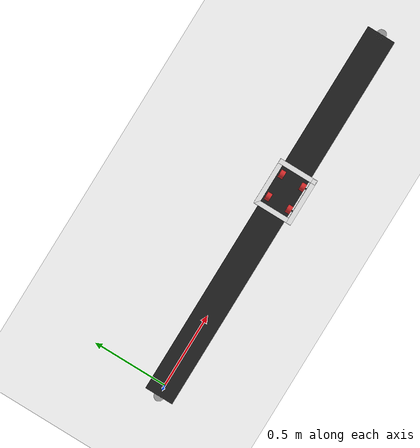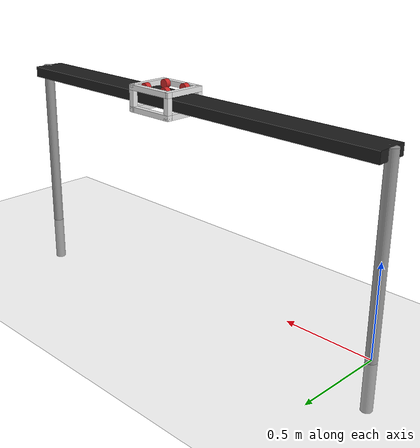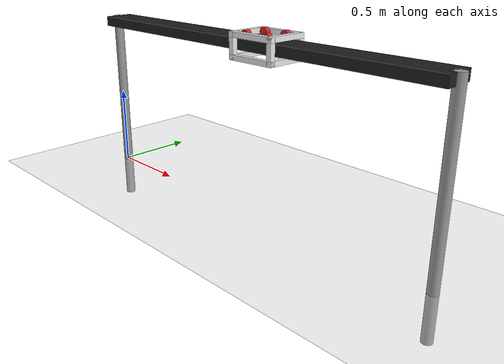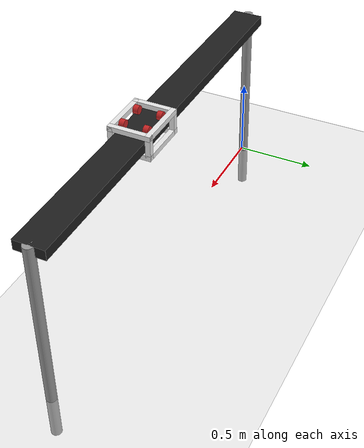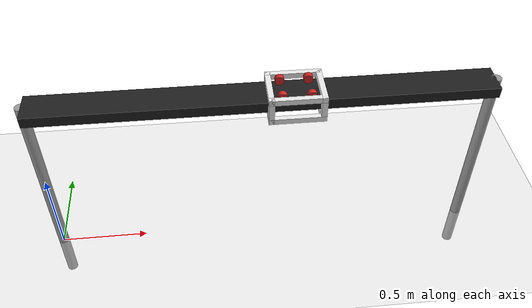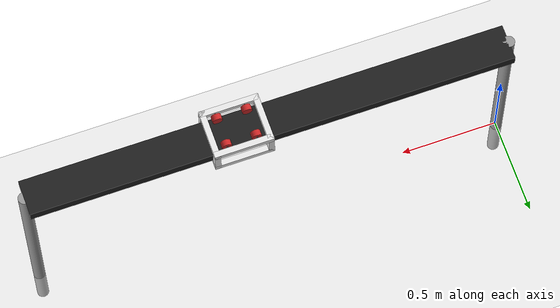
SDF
<sdf version="1.6">
 <world name="default">
  <light name="sun" type="directional">
   <pose>0 0 10 0 -0 0</pose>
   <diffuse>0.8 0.8 0.8 1</diffuse>
   <specular>0.1 0.1 0.1 1</specular>
   <attenuation>
    <range>1000</range>
    <constant>0.9</constant>
    <linear>0.01</linear>
    <quadratic>0.001</quadratic>
   </attenuation>
   <direction>-0.5 0.5 -1</direction>
  </light>
  <model name="ground_plane">
   <static>1</static>
   <link name="link">
    <collision name="collision">
     <geometry><plane><normal>0 0 1</normal><size>100 100</size></plane></geometry>
     <surface><friction><ode><mu>100</mu><mu2>50</mu2></ode></friction></surface>
    </collision>
    <visual name="visual">
     <cast_shadows>0</cast_shadows>
     <geometry><plane><normal>0 0 1</normal><size>100 100</size></plane></geometry>
     <material>
      <script><uri>file://media/materials/scripts/gazebo.material</uri><name>Gazebo/Grey</name></script>
     </material>
    </visual>
   </link>
  </model>
  <gravity>0 0 -9.8</gravity>
  <magnetic_field>6e-06 2.3e-05 -4.2e-05</magnetic_field>
  <atmosphere type="adiabatic"/>
  <physics name="default_physics" default="0" type="ode">
   <max_step_size>0.001</max_step_size>
   <real_time_factor>1</real_time_factor>
   <real_time_update_rate>1000</real_time_update_rate>
  </physics>
  <scene><ambient>0.4 0.4 0.4 1</ambient><background>0.7 0.7 0.7 1</background><shadows>1</shadows></scene>
  <spherical_coordinates>
   <surface_model>EARTH_WGS84</surface_model>
   <latitude_deg>0</latitude_deg>
   <longitude_deg>0</longitude_deg>
   <elevation>0</elevation>
   <heading_deg>0</heading_deg>
  </spherical_coordinates>
  <model name="aTrack">
   <static>1</static>
   <link name="link">
    <collision name="surface">
     <pose>0 0 1 0 -0 0</pose>
     <geometry><box><size>2.45 0.18 0.06</size></box></geometry>
     <surface><friction><ode><mu>0.6</mu><mu2>0.6</mu2></ode></friction></surface>
    </collision>
    <visual name="visual1">
     <pose>0 0 1 0 -0 0</pose>
     <geometry><box><size>2.45 0.18 0.06</size></box></geometry>
     <material>
      <script><uri>file://media/materials/scripts/gazebo.material</uri><name>Gazebo/Black</name></script>
     </material>
    </visual>
    <collision name="right_leg">
     <pose>-1.225 0 0.38 0 -0 0</pose>
     <geometry><cylinder><radius>0.03</radius><length>1.3</length></cylinder></geometry>
    </collision>
    <visual name="right_leg">
     <pose>-1.225 0 0.38 0 -0 0</pose>
     <geometry><cylinder><radius>0.03</radius><length>1.3</length></cylinder></geometry>
     <material>
      <script><uri>file://media/materials/scripts/gazebo.material</uri><name>Gazebo/Grey</name></script>
     </material>
    </visual>
    <collision name="left_leg">
     <pose>1.225 0 0.38 0 -0 0</pose>
     <geometry><cylinder><radius>0.03</radius><length>1.3</length></cylinder></geometry>
    </collision>
    <visual name="left_leg">
     <pose>1.225 0 0.38 0 -0 0</pose>
     <geometry><cylinder><radius>0.03</radius><length>1.3</length></cylinder></geometry>
     <material>
      <script><uri>file://media/materials/scripts/gazebo.material</uri><name>Gazebo/Grey</name></script>
     </material>
    </visual>
   </link>
   <pose>1.22216 0.007845 0 0 -0 0</pose>
  </model>
  <model name="mrobot">
   <link name="base_footprint">
    <inertial>
     <pose>0 -0.11 0.075 0 -0 0</pose>
     <mass>60</mass>
     <inertia>
      <ixx>24.628</ixx>
      <ixy>0</ixy>
      <ixz>0</ixz>
      <iyy>24.873</iyy>
      <iyz>1.11022e-16</iyz>
      <izz>25.213</izz>
     </inertia>
    </inertial>
    <collision name="base_footprint_fixed_joint_lump__base_link_collision">
     <pose>0 0 0.135 0 -0 0</pose>
     <geometry><box><size>0.3 0.03 0.03</size></box></geometry>
    </collision>
    <collision name="base_footprint_fixed_joint_lump__base1_link_collision_1">
     <pose>0 -0.22 0.135 0 -0 0</pose>
     <geometry><box><size>0.3 0.03 0.03</size></box></geometry>
    </collision>
    <collision name="base_footprint_fixed_joint_lump__base3_link_collision_2">
     <pose>0 -0.22 0.015 0 -0 0</pose>
     <geometry><box><size>0.3 0.03 0.03</size></box></geometry>
    </collision>
    <collision name="base_footprint_fixed_joint_lump__base2_link_collision_3">
     <pose>0 0 0.015 0 -0 0</pose>
     <geometry><box><size>0.3 0.03 0.03</size></box></geometry>
    </collision>
    <collision name="base_footprint_fixed_joint_lump__body1-1_link_collision_4">
     <pose>0.135 -0.11 0.135 0 0 -1.5708</pose>
     <geometry><box><size>0.25 0.03 0.03</size></box></geometry>
    </collision>
    <collision name="base_footprint_fixed_joint_lump__body1-2_link_collision_5">
     <pose>0.135 -0.11 0.015 0 0 -1.5708</pose>
     <geometry><box><size>0.25 0.03 0.03</size></box></geometry>
    </collision>
    <collision name="base_footprint_fixed_joint_lump__body1-3_link_collision_6">
     <pose>-0.135 -0.11 0.135 0 0 -1.5708</pose>
     <geometry><box><size>0.25 0.03 0.03</size></box></geometry>
    </collision>
    <collision name="base_footprint_fixed_joint_lump__body1-4_link_collision_7">
     <pose>-0.135 -0.11 0.015 0 0 -1.5708</pose>
     <geometry><box><size>0.25 0.03 0.03</size></box></geometry>
    </collision>
    <collision name="base_footprint_fixed_joint_lump__body2-1_link_collision_8">
     <pose>0.135 0 0.075 0 -0 0</pose>
     <geometry><box><size>0.03 0.03 0.15</size></box></geometry>
    </collision>
    <collision name="base_footprint_fixed_joint_lump__body2-2_link_collision_9">
     <pose>0.135 -0.22 0.075 0 -0 0</pose>
     <geometry><box><size>0.03 0.03 0.15</size></box></geometry>
    </collision>
    <collision name="base_footprint_fixed_joint_lump__body2-3_link_collision_10">
     <pose>-0.135 0 0.075 0 -0 0</pose>
     <geometry><box><size>0.03 0.03 0.15</size></box></geometry>
    </collision>
    <collision name="base_footprint_fixed_joint_lump__body2-4_link_collision_11">
     <pose>-0.135 -0.22 0.075 0 -0 0</pose>
     <geometry><box><size>0.03 0.03 0.15</size></box></geometry>
    </collision>
    <visual name="base_footprint_visual">
     <geometry><box><size>0.001 0.001 0.001</size></box></geometry>
     <material><script><uri>__default__</uri><name>__default__</name></script></material>
    </visual>
    <visual name="base_footprint_fixed_joint_lump__base_link_visual_1">
     <pose>0 0 0.135 0 -0 0</pose>
     <geometry><box><size>0.3 0.03 0.03</size></box></geometry>
     <material>
      <script><name>Gazebo/White</name><uri>file://media/materials/scripts/gazebo.material</uri></script>
     </material>
    </visual>
    <visual name="base_footprint_fixed_joint_lump__base1_link_visual_2">
     <pose>0 -0.22 0.135 0 -0 0</pose>
     <geometry><box><size>0.3 0.03 0.03</size></box></geometry>
     <material>
      <script><name>Gazebo/White</name><uri>file://media/materials/scripts/gazebo.material</uri></script>
     </material>
    </visual>
    <visual name="base_footprint_fixed_joint_lump__base3_link_visual_3">
     <pose>0 -0.22 0.015 0 -0 0</pose>
     <geometry><box><size>0.3 0.03 0.03</size></box></geometry>
     <material>
      <script><name>Gazebo/White</name><uri>file://media/materials/scripts/gazebo.material</uri></script>
     </material>
    </visual>
    <visual name="base_footprint_fixed_joint_lump__base2_link_visual_4">
     <pose>0 0 0.015 0 -0 0</pose>
     <geometry><box><size>0.3 0.03 0.03</size></box></geometry>
     <material>
      <script><name>Gazebo/White</name><uri>file://media/materials/scripts/gazebo.material</uri></script>
     </material>
    </visual>
    <visual name="base_footprint_fixed_joint_lump__body1-1_link_visual_5">
     <pose>0.135 -0.11 0.135 0 0 -1.5708</pose>
     <geometry><box><size>0.25 0.03 0.03</size></box></geometry>
     <material>
      <script><name>Gazebo/White</name><uri>file://media/materials/scripts/gazebo.material</uri></script>
     </material>
    </visual>
    <visual name="base_footprint_fixed_joint_lump__body1-2_link_visual_6">
     <pose>0.135 -0.11 0.015 0 0 -1.5708</pose>
     <geometry><box><size>0.25 0.03 0.03</size></box></geometry>
     <material>
      <script><name>Gazebo/White</name><uri>file://media/materials/scripts/gazebo.material</uri></script>
     </material>
    </visual>
    <visual name="base_footprint_fixed_joint_lump__body1-3_link_visual_7">
     <pose>-0.135 -0.11 0.135 0 0 -1.5708</pose>
     <geometry><box><size>0.25 0.03 0.03</size></box></geometry>
     <material>
      <script><name>Gazebo/White</name><uri>file://media/materials/scripts/gazebo.material</uri></script>
     </material>
    </visual>
    <visual name="base_footprint_fixed_joint_lump__body1-4_link_visual_8">
     <pose>-0.135 -0.11 0.015 0 0 -1.5708</pose>
     <geometry><box><size>0.25 0.03 0.03</size></box></geometry>
     <material>
      <script><name>Gazebo/White</name><uri>file://media/materials/scripts/gazebo.material</uri></script>
     </material>
    </visual>
    <visual name="base_footprint_fixed_joint_lump__body2-1_link_visual_9">
     <pose>0.135 0 0.075 0 -0 0</pose>
     <geometry><box><size>0.03 0.03 0.15</size></box></geometry>
     <material>
      <script><name>Gazebo/White</name><uri>file://media/materials/scripts/gazebo.material</uri></script>
     </material>
    </visual>
    <visual name="base_footprint_fixed_joint_lump__body2-2_link_visual_10">
     <pose>0.135 -0.22 0.075 0 -0 0</pose>
     <geometry><box><size>0.03 0.03 0.15</size></box></geometry>
     <material>
      <script><name>Gazebo/White</name><uri>file://media/materials/scripts/gazebo.material</uri></script>
     </material>
    </visual>
    <visual name="base_footprint_fixed_joint_lump__body2-3_link_visual_11">
     <pose>-0.135 0 0.075 0 -0 0</pose>
     <geometry><box><size>0.03 0.03 0.15</size></box></geometry>
     <material>
      <script><name>Gazebo/White</name><uri>file://media/materials/scripts/gazebo.material</uri></script>
     </material>
    </visual>
    <visual name="base_footprint_fixed_joint_lump__body2-4_link_visual_12">
     <pose>-0.135 -0.22 0.075 0 -0 0</pose>
     <geometry><box><size>0.03 0.03 0.15</size></box></geometry>
     <material>
      <script><name>Gazebo/White</name><uri>file://media/materials/scripts/gazebo.material</uri></script>
     </material>
    </visual>
   </link>
   <link name="connect3_link">
    <pose>-0.075 -0.205 0.135 0 -0 0</pose>
    <inertial>
     <pose>0 0.016667 0 0 -0 0</pose>
     <mass>3</mass>
     <inertia>
      <ixx>0.00091875</ixx>
      <ixy>0</ixy>
      <ixz>0</ixz>
      <iyy>0.000502083</iyy>
      <iyz>0</iyz>
      <izz>0.00105417</izz>
     </inertia>
    </inertial>
    <collision name="connect3_link_collision">
     <pose>0 0 0 1.5708 -0 0</pose>
     <geometry><cylinder><length>0.02</length><radius>0.005</radius></cylinder></geometry>
    </collision>
    <collision name="connect3_link_fixed_joint_lump__wheel3_link_collision_1">
     <pose>0 0.025 0 1.5708 -0 0</pose>
     <geometry><cylinder><length>0.03</length><radius>0.025</radius></cylinder></geometry>
    </collision>
    <visual name="connect3_link_visual">
     <pose>0 0 0 1.5708 -0 0</pose>
     <geometry><cylinder><length>0.02</length><radius>0.005</radius></cylinder></geometry>
     <material>
      <script><name>Gazebo/Black</name><uri>file://media/materials/scripts/gazebo.material</uri></script>
     </material>
    </visual>
    <visual name="connect3_link_fixed_joint_lump__wheel3_link_visual_1">
     <pose>0 0.025 0 1.5708 -0 0</pose>
     <geometry><cylinder><length>0.03</length><radius>0.025</radius></cylinder></geometry>
     <material>
      <script><name>Gazebo/Red</name><uri>file://media/materials/scripts/gazebo.material</uri></script>
     </material>
    </visual>
   </link>
   <joint name="left_wheel3_joint" type="revolute">
    <child>connect3_link</child>
    <parent>base_footprint</parent>
    <axis>
     <xyz>0 1 0</xyz>
     <limit><lower>-1e+16</lower><upper>1e+16</upper></limit>
     <dynamics><spring_reference>0</spring_reference><spring_stiffness>0</spring_stiffness></dynamics>
     <use_parent_model_frame>1</use_parent_model_frame>
    </axis>
   </joint>
   <link name="connect4_link">
    <pose>0.075 -0.205 0.135 0 -0 0</pose>
    <inertial>
     <pose>0 0.016667 0 0 -0 0</pose>
     <mass>3</mass>
     <inertia>
      <ixx>0.00091875</ixx>
      <ixy>0</ixy>
      <ixz>0</ixz>
      <iyy>0.000502083</iyy>
      <iyz>0</iyz>
      <izz>0.00105417</izz>
     </inertia>
    </inertial>
    <collision name="connect4_link_collision">
     <pose>0 0 0 1.5708 -0 0</pose>
     <geometry><cylinder><length>0.02</length><radius>0.005</radius></cylinder></geometry>
    </collision>
    <collision name="connect4_link_fixed_joint_lump__wheel4_link_collision_1">
     <pose>0 0.025 0 1.5708 -0 0</pose>
     <geometry><cylinder><length>0.03</length><radius>0.025</radius></cylinder></geometry>
    </collision>
    <visual name="connect4_link_visual">
     <pose>0 0 0 1.5708 -0 0</pose>
     <geometry><cylinder><length>0.02</length><radius>0.005</radius></cylinder></geometry>
     <material>
      <script><name>Gazebo/Black</name><uri>file://media/materials/scripts/gazebo.material</uri></script>
     </material>
    </visual>
    <visual name="connect4_link_fixed_joint_lump__wheel4_link_visual_1">
     <pose>0 0.025 0 1.5708 -0 0</pose>
     <geometry><cylinder><length>0.03</length><radius>0.025</radius></cylinder></geometry>
     <material>
      <script><name>Gazebo/Red</name><uri>file://media/materials/scripts/gazebo.material</uri></script>
     </material>
    </visual>
   </link>
   <joint name="left_wheel4_joint" type="revolute">
    <child>connect4_link</child>
    <parent>base_footprint</parent>
    <axis>
     <xyz>0 1 0</xyz>
     <limit><lower>-1e+16</lower><upper>1e+16</upper></limit>
     <dynamics><spring_reference>0</spring_reference><spring_stiffness>0</spring_stiffness></dynamics>
     <use_parent_model_frame>1</use_parent_model_frame>
    </axis>
   </joint>
   <link name="sphere3_link">
    <pose>-0.135 -0.075 0.115 0 -0 0</pose>
    <inertial>
     <mass>1</mass>
     <inertia><ixx>1e-05</ixx><ixy>0</ixy><ixz>0</ixz><iyy>1e-05</iyy><iyz>0</iyz><izz>1e-05</izz></inertia>
    </inertial>
    <collision name="sphere3_link_collision">
     <geometry><sphere><radius>0.005</radius></sphere></geometry>
    </collision>
    <visual name="sphere3_link_visual">
     <geometry><sphere><radius>0.005</radius></sphere></geometry>
     <material>
      <script><name>Gazebo/Black</name><uri>file://media/materials/scripts/gazebo.material</uri></script>
     </material>
    </visual>
   </link>
   <joint name="sphere3_joint" type="revolute">
    <child>sphere3_link</child>
    <parent>base_footprint</parent>
    <axis>
     <xyz>0 1 0</xyz>
     <limit><lower>-1e+16</lower><upper>1e+16</upper></limit>
     <dynamics><spring_reference>0</spring_reference><spring_stiffness>0</spring_stiffness></dynamics>
     <use_parent_model_frame>1</use_parent_model_frame>
    </axis>
   </joint>
   <link name="sphere4_link">
    <pose>-0.135 -0.145 0.115 0 -0 0</pose>
    <inertial>
     <mass>1</mass>
     <inertia><ixx>1e-05</ixx><ixy>0</ixy><ixz>0</ixz><iyy>1e-05</iyy><iyz>0</iyz><izz>1e-05</izz></inertia>
    </inertial>
    <collision name="sphere4_link_collision">
     <geometry><sphere><radius>0.005</radius></sphere></geometry>
    </collision>
    <visual name="sphere4_link_visual">
     <geometry><sphere><radius>0.005</radius></sphere></geometry>
     <material>
      <script><name>Gazebo/Black</name><uri>file://media/materials/scripts/gazebo.material</uri></script>
     </material>
    </visual>
   </link>
   <joint name="sphere4_joint" type="revolute">
    <child>sphere4_link</child>
    <parent>base_footprint</parent>
    <axis>
     <xyz>0 1 0</xyz>
     <limit><lower>-1e+16</lower><upper>1e+16</upper></limit>
     <dynamics><spring_reference>0</spring_reference><spring_stiffness>0</spring_stiffness></dynamics>
     <use_parent_model_frame>1</use_parent_model_frame>
    </axis>
   </joint>
   <link name="sphere1_link">
    <pose>0.135 -0.075 0.115 0 -0 0</pose>
    <inertial>
     <mass>1</mass>
     <inertia><ixx>1e-05</ixx><ixy>0</ixy><ixz>0</ixz><iyy>1e-05</iyy><iyz>0</iyz><izz>1e-05</izz></inertia>
    </inertial>
    <collision name="sphere1_link_collision">
     <geometry><sphere><radius>0.005</radius></sphere></geometry>
    </collision>
    <visual name="sphere1_link_visual">
     <geometry><sphere><radius>0.005</radius></sphere></geometry>
     <material>
      <script><name>Gazebo/Black</name><uri>file://media/materials/scripts/gazebo.material</uri></script>
     </material>
    </visual>
   </link>
   <joint name="sphere1_joint" type="revolute">
    <child>sphere1_link</child>
    <parent>base_footprint</parent>
    <axis>
     <xyz>0 1 0</xyz>
     <limit><lower>-1e+16</lower><upper>1e+16</upper></limit>
     <dynamics><spring_reference>0</spring_reference><spring_stiffness>0</spring_stiffness></dynamics>
     <use_parent_model_frame>1</use_parent_model_frame>
    </axis>
   </joint>
   <link name="sphere2_link">
    <pose>0.135 -0.145 0.115 0 -0 0</pose>
    <inertial>
     <mass>1</mass>
     <inertia><ixx>1e-05</ixx><ixy>0</ixy><ixz>0</ixz><iyy>1e-05</iyy><iyz>0</iyz><izz>1e-05</izz></inertia>
    </inertial>
    <collision name="sphere2_link_collision">
     <geometry><sphere><radius>0.005</radius></sphere></geometry>
    </collision>
    <visual name="sphere2_link_visual">
     <geometry><sphere><radius>0.005</radius></sphere></geometry>
     <material>
      <script><name>Gazebo/Black</name><uri>file://media/materials/scripts/gazebo.material</uri></script>
     </material>
    </visual>
   </link>
   <joint name="sphere2_joint" type="revolute">
    <child>sphere2_link</child>
    <parent>base_footprint</parent>
    <axis>
     <xyz>0 1 0</xyz>
     <limit><lower>-1e+16</lower><upper>1e+16</upper></limit>
     <dynamics><spring_reference>0</spring_reference><spring_stiffness>0</spring_stiffness></dynamics>
     <use_parent_model_frame>1</use_parent_model_frame>
    </axis>
   </joint>
   <link name="connect1_link">
    <pose>-0.075 -0.015 0.135 0 -0 0</pose>
    <inertial>
     <pose>0 -0.016667 0 0 -0 0</pose>
     <mass>3</mass>
     <inertia>
      <ixx>0.00091875</ixx>
      <ixy>0</ixy>
      <ixz>0</ixz>
      <iyy>0.000502083</iyy>
      <iyz>0</iyz>
      <izz>0.00105417</izz>
     </inertia>
    </inertial>
    <collision name="connect1_link_collision">
     <pose>0 0 0 1.5708 -0 0</pose>
     <geometry><cylinder><length>0.02</length><radius>0.005</radius></cylinder></geometry>
    </collision>
    <collision name="connect1_link_fixed_joint_lump__wheel1_link_collision_1">
     <pose>0 -0.025 0 1.5708 -0 0</pose>
     <geometry><cylinder><length>0.03</length><radius>0.025</radius></cylinder></geometry>
    </collision>
    <visual name="connect1_link_visual">
     <pose>0 0 0 1.5708 -0 0</pose>
     <geometry><cylinder><length>0.02</length><radius>0.005</radius></cylinder></geometry>
     <material>
      <script><name>Gazebo/Black</name><uri>file://media/materials/scripts/gazebo.material</uri></script>
     </material>
    </visual>
    <visual name="connect1_link_fixed_joint_lump__wheel1_link_visual_1">
     <pose>0 -0.025 0 1.5708 -0 0</pose>
     <geometry><cylinder><length>0.03</length><radius>0.025</radius></cylinder></geometry>
     <material>
      <script><name>Gazebo/Red</name><uri>file://media/materials/scripts/gazebo.material</uri></script>
     </material>
    </visual>
   </link>
   <joint name="right_wheel1_joint" type="revolute">
    <child>connect1_link</child>
    <parent>base_footprint</parent>
    <axis>
     <xyz>0 1 0</xyz>
     <limit><lower>-1e+16</lower><upper>1e+16</upper></limit>
     <dynamics><spring_reference>0</spring_reference><spring_stiffness>0</spring_stiffness></dynamics>
     <use_parent_model_frame>1</use_parent_model_frame>
    </axis>
   </joint>
   <link name="connect2_link">
    <pose>0.075 -0.015 0.135 0 -0 0</pose>
    <inertial>
     <pose>0 -0.016667 0 0 -0 0</pose>
     <mass>3</mass>
     <inertia>
      <ixx>0.00091875</ixx>
      <ixy>0</ixy>
      <ixz>0</ixz>
      <iyy>0.000502083</iyy>
      <iyz>0</iyz>
      <izz>0.00105417</izz>
     </inertia>
    </inertial>
    <collision name="connect2_link_collision">
     <pose>0 0 0 1.5708 -0 0</pose>
     <geometry><cylinder><length>0.02</length><radius>0.005</radius></cylinder></geometry>
    </collision>
    <collision name="connect2_link_fixed_joint_lump__wheel2_link_collision_1">
     <pose>0 -0.025 0 1.5708 -0 0</pose>
     <geometry><cylinder><length>0.03</length><radius>0.025</radius></cylinder></geometry>
    </collision>
    <visual name="connect2_link_visual">
     <pose>0 0 0 1.5708 -0 0</pose>
     <geometry><cylinder><length>0.02</length><radius>0.005</radius></cylinder></geometry>
     <material>
      <script><name>Gazebo/Black</name><uri>file://media/materials/scripts/gazebo.material</uri></script>
     </material>
    </visual>
    <visual name="connect2_link_fixed_joint_lump__wheel2_link_visual_1">
     <pose>0 -0.025 0 1.5708 -0 0</pose>
     <geometry><cylinder><length>0.03</length><radius>0.025</radius></cylinder></geometry>
     <material>
      <script><name>Gazebo/Red</name><uri>file://media/materials/scripts/gazebo.material</uri></script>
     </material>
    </visual>
   </link>
   <joint name="right_wheel2_joint" type="revolute">
    <child>connect2_link</child>
    <parent>base_footprint</parent>
    <axis>
     <xyz>0 1 0</xyz>
     <limit><lower>-1e+16</lower><upper>1e+16</upper></limit>
     <dynamics><spring_reference>0</spring_reference><spring_stiffness>0</spring_stiffness></dynamics>
     <use_parent_model_frame>1</use_parent_model_frame>
    </axis>
   </joint>
   <static>0</static>
   <plugin name="differential_drive_controller" filename="libgazebo_ros_diff_drive.so">
    <rosDebugLevel>Debug</rosDebugLevel>
    <publishWheelTF>true</publishWheelTF>
    <robotNamespace>/</robotNamespace>
    <publishTf>1</publishTf>
    <publishWheelJointState>true</publishWheelJointState>
    <alwaysOn>true</alwaysOn>
    <updateRate>100.0</updateRate>
    <legacyMode>true</legacyMode>
    <leftJoint>right_wheel1_joint</leftJoint>
    <rightJoint>right_wheel2_joint</rightJoint>
    <wheelSeparation>1</wheelSeparation>
    <wheelDiameter>0.05</wheelDiameter>
    <broadcastTF>1</broadcastTF>
    <wheelTorque>30</wheelTorque>
    <wheelAcceleration>1.8</wheelAcceleration>
    <commandTopic>cmd_vel</commandTopic>
    <odometryFrame>odom</odometryFrame>
    <odometryTopic>odom</odometryTopic>
    <robotBaseFrame>base_footprint</robotBaseFrame>
   </plugin>
   <pose>1.38349 0.1131 0.919998 -1.6e-05 -1.6e-05 0.000195</pose>
  </model>
 </world>
</sdf>
